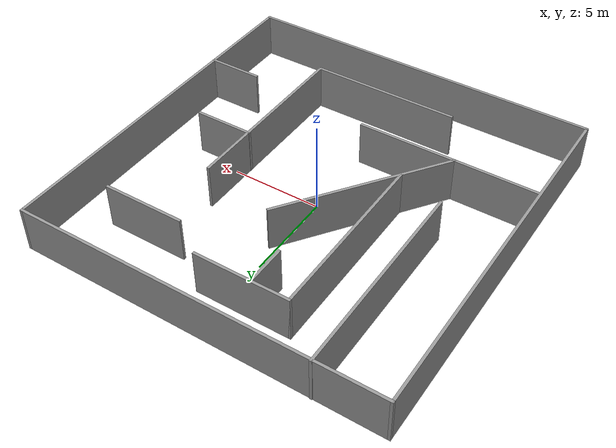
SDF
<?xml version='1.0'?>
<sdf version='1.7'>
  <model name='maze20'>
    <pose>0.051843 -0.137492 0 0 -0 0</pose>
    <link name='Wall_0'>
      <collision name='Wall_0_Collision'>
        <geometry>
          <box>
            <size>20.25 0.15 2.5</size>
          </box>
        </geometry>
        <pose>0 0 1.25 0 -0 0</pose>
      </collision>
      <visual name='Wall_0_Visual'>
        <pose>0 0 1.25 0 -0 0</pose>
        <geometry>
          <box>
            <size>20.25 0.15 2.5</size>
          </box>
        </geometry>
        <material>
          <script>
            <uri>file://media/materials/scripts/gazebo.material</uri>
            <name>Gazebo/Grey</name>
          </script>
          <ambient>1 1 1 1</ambient>
        </material>
        <meta>
          <layer>0</layer>
        </meta>
      </visual>
      <pose>-9.925 -0.014851 0 0 -0 -1.5708</pose>
    </link>
    <link name='Wall_1'>
      <collision name='Wall_1_Collision'>
        <geometry>
          <box>
            <size>20 0.15 2.5</size>
          </box>
        </geometry>
        <pose>0 0 1.25 0 -0 0</pose>
      </collision>
      <visual name='Wall_1_Visual'>
        <pose>0 0 1.25 0 -0 0</pose>
        <geometry>
          <box>
            <size>20 0.15 2.5</size>
          </box>
        </geometry>
        <material>
          <script>
            <uri>file://media/materials/scripts/gazebo.material</uri>
            <name>Gazebo/Grey</name>
          </script>
          <ambient>1 1 1 1</ambient>
        </material>
        <meta>
          <layer>0</layer>
        </meta>
      </visual>
      <pose>0 -10.0649 0 0 -0 0</pose>
    </link>
    <link name='Wall_11'>
      <collision name='Wall_11_Collision'>
        <geometry>
          <box>
            <size>10.25 0.15 2.5</size>
          </box>
        </geometry>
        <pose>0 0 1.25 0 -0 0</pose>
      </collision>
      <visual name='Wall_11_Visual'>
        <pose>0 0 1.25 0 -0 0</pose>
        <geometry>
          <box>
            <size>10.25 0.15 2.5</size>
          </box>
        </geometry>
        <material>
          <script>
            <uri>file://media/materials/scripts/gazebo.material</uri>
            <name>Gazebo/Grey</name>
          </script>
          <ambient>1 1 1 1</ambient>
        </material>
        <meta>
          <layer>0</layer>
        </meta>
      </visual>
      <pose>4.48594 -2.16863 0 0 -0 1.5708</pose>
    </link>
    <link name='Wall_13'>
      <collision name='Wall_13_Collision'>
        <geometry>
          <box>
            <size>3.25 0.15 2.5</size>
          </box>
        </geometry>
        <pose>0 0 1.25 0 -0 0</pose>
      </collision>
      <visual name='Wall_13_Visual'>
        <pose>0 0 1.25 0 -0 0</pose>
        <geometry>
          <box>
            <size>3.25 0.15 2.5</size>
          </box>
        </geometry>
        <material>
          <script>
            <uri>file://media/materials/scripts/gazebo.material</uri>
            <name>Gazebo/Grey</name>
          </script>
          <ambient>1 1 1 1</ambient>
        </material>
        <meta>
          <layer>0</layer>
        </meta>
      </visual>
      <pose>6.01176 -0.397007 0 0 -0 0</pose>
    </link>
    <link name='Wall_15'>
      <collision name='Wall_15_Collision'>
        <geometry>
          <box>
            <size>3 0.15 2.5</size>
          </box>
        </geometry>
        <pose>0 0 1.25 0 -0 0</pose>
      </collision>
      <visual name='Wall_15_Visual'>
        <pose>0 0 1.25 0 -0 0</pose>
        <geometry>
          <box>
            <size>3 0.15 2.5</size>
          </box>
        </geometry>
        <material>
          <script>
            <uri>file://media/materials/scripts/gazebo.material</uri>
            <name>Gazebo/Grey</name>
          </script>
          <ambient>1 1 1 1</ambient>
        </material>
        <meta>
          <layer>0</layer>
        </meta>
      </visual>
      <pose>8.48693 -4.67964 0 0 -0 0</pose>
    </link>
    <link name='Wall_17'>
      <collision name='Wall_17_Collision'>
        <geometry>
          <box>
            <size>9.86157 0.15 2.5</size>
          </box>
        </geometry>
        <pose>0 0 1.25 0 -0 0</pose>
      </collision>
      <visual name='Wall_17_Visual'>
        <pose>0 0 1.25 0 -0 0</pose>
        <geometry>
          <box>
            <size>9.86157 0.15 2.5</size>
          </box>
        </geometry>
        <material>
          <script>
            <uri>file://media/materials/scripts/gazebo.material</uri>
            <name>Gazebo/Grey</name>
          </script>
          <ambient>1 1 1 1</ambient>
        </material>
        <meta>
          <layer>0</layer>
        </meta>
      </visual>
      <pose>-2.5281 -0.182875 0 0 -0 0.948716</pose>
    </link>
    <link name='Wall_19'>
      <collision name='Wall_19_Collision'>
        <geometry>
          <box>
            <size>4.5 0.15 2.5</size>
          </box>
        </geometry>
        <pose>0 0 1.25 0 -0 0</pose>
      </collision>
      <visual name='Wall_19_Visual'>
        <pose>0 0 1.25 0 -0 0</pose>
        <geometry>
          <box>
            <size>4.5 0.15 2.5</size>
          </box>
        </geometry>
        <material>
          <script>
            <uri>file://media/materials/scripts/gazebo.material</uri>
            <name>Gazebo/Grey</name>
          </script>
          <ambient>1 1 1 1</ambient>
        </material>
        <meta>
          <layer>0</layer>
        </meta>
      </visual>
      <pose>5.50493 6.60816 0 0 -0 0</pose>
    </link>
    <link name='Wall_2'>
      <collision name='Wall_2_Collision'>
        <geometry>
          <box>
            <size>20.25 0.15 2.5</size>
          </box>
        </geometry>
        <pose>0 0 1.25 0 -0 0</pose>
      </collision>
      <visual name='Wall_2_Visual'>
        <pose>0 0 1.25 0 -0 0</pose>
        <geometry>
          <box>
            <size>20.25 0.15 2.5</size>
          </box>
        </geometry>
        <material>
          <script>
            <uri>file://media/materials/scripts/gazebo.material</uri>
            <name>Gazebo/Grey</name>
          </script>
          <ambient>1 1 1 1</ambient>
        </material>
        <meta>
          <layer>0</layer>
        </meta>
      </visual>
      <pose>9.925 -0.014851 0 0 -0 1.5708</pose>
    </link>
    <link name='Wall_21'>
      <collision name='Wall_21_Collision'>
        <geometry>
          <box>
            <size>9.75 0.15 2.5</size>
          </box>
        </geometry>
        <pose>0 0 1.25 0 -0 0</pose>
      </collision>
      <visual name='Wall_21_Visual'>
        <pose>0 0 1.25 0 -0 0</pose>
        <geometry>
          <box>
            <size>9.75 0.15 2.5</size>
          </box>
        </geometry>
        <material>
          <script>
            <uri>file://media/materials/scripts/gazebo.material</uri>
            <name>Gazebo/Grey</name>
          </script>
          <ambient>1 1 1 1</ambient>
        </material>
        <meta>
          <layer>0</layer>
        </meta>
      </visual>
      <pose>-3.67524 3.09295 0 0 -0 -1.5708</pose>
    </link>
    <link name='Wall_23'>
      <collision name='Wall_23_Collision'>
        <geometry>
          <box>
            <size>5.25 0.15 2.5</size>
          </box>
        </geometry>
        <pose>0 0 1.25 0 -0 0</pose>
      </collision>
      <visual name='Wall_23_Visual'>
        <pose>0 0 1.25 0 -0 0</pose>
        <geometry>
          <box>
            <size>5.25 0.15 2.5</size>
          </box>
        </geometry>
        <material>
          <script>
            <uri>file://media/materials/scripts/gazebo.material</uri>
            <name>Gazebo/Grey</name>
          </script>
          <ambient>1 1 1 1</ambient>
        </material>
        <meta>
          <layer>0</layer>
        </meta>
      </visual>
      <pose>-1.12524 7.89295 0 0 -0 0</pose>
    </link>
    <link name='Wall_25'>
      <collision name='Wall_25_Collision'>
        <geometry>
          <box>
            <size>2.25 0.15 2.5</size>
          </box>
        </geometry>
        <pose>0 0 1.25 0 -0 0</pose>
      </collision>
      <visual name='Wall_25_Visual'>
        <pose>0 0 1.25 0 -0 0</pose>
        <geometry>
          <box>
            <size>2.25 0.15 2.5</size>
          </box>
        </geometry>
        <material>
          <script>
            <uri>file://media/materials/scripts/gazebo.material</uri>
            <name>Gazebo/Grey</name>
          </script>
          <ambient>1 1 1 1</ambient>
        </material>
        <meta>
          <layer>0</layer>
        </meta>
      </visual>
      <pose>-1.65628 6.80163 0 0 -0 1.5708</pose>
    </link>
    <link name='Wall_3'>
      <collision name='Wall_3_Collision'>
        <geometry>
          <box>
            <size>20 0.15 2.5</size>
          </box>
        </geometry>
        <pose>0 0 1.25 0 -0 0</pose>
      </collision>
      <visual name='Wall_3_Visual'>
        <pose>0 0 1.25 0 -0 0</pose>
        <geometry>
          <box>
            <size>20 0.15 2.5</size>
          </box>
        </geometry>
        <material>
          <script>
            <uri>file://media/materials/scripts/gazebo.material</uri>
            <name>Gazebo/Grey</name>
          </script>
          <ambient>1 1 1 1</ambient>
        </material>
        <meta>
          <layer>0</layer>
        </meta>
      </visual>
      <pose>0 10.0351 0 0 -0 3.14159</pose>
    </link>
    <link name='Wall_5'>
      <collision name='Wall_5_Collision'>
        <geometry>
          <box>
            <size>11.25 0.15 2.5</size>
          </box>
        </geometry>
        <pose>0 0 1.25 0 -0 0</pose>
      </collision>
      <visual name='Wall_5_Visual'>
        <pose>0 0 1.25 0 -0 0</pose>
        <geometry>
          <box>
            <size>11.25 0.15 2.5</size>
          </box>
        </geometry>
        <material>
          <script>
            <uri>file://media/materials/scripts/gazebo.material</uri>
            <name>Gazebo/Grey</name>
          </script>
          <ambient>1 1 1 1</ambient>
        </material>
        <meta>
          <layer>0</layer>
        </meta>
      </visual>
      <pose>-6.21423 4.51485 0 0 -0 -1.5708</pose>
    </link>
    <link name='Wall_7'>
      <collision name='Wall_7_Collision'>
        <geometry>
          <box>
            <size>10 0.15 2.5</size>
          </box>
        </geometry>
        <pose>0 0 1.25 0 -0 0</pose>
      </collision>
      <visual name='Wall_7_Visual'>
        <pose>0 0 1.25 0 -0 0</pose>
        <geometry>
          <box>
            <size>10 0.15 2.5</size>
          </box>
        </geometry>
        <material>
          <script>
            <uri>file://media/materials/scripts/gazebo.material</uri>
            <name>Gazebo/Grey</name>
          </script>
          <ambient>1 1 1 1</ambient>
        </material>
        <meta>
          <layer>0</layer>
        </meta>
      </visual>
      <pose>-4.99064 -4.12901 0 0 -0 0</pose>
    </link>
    <link name='Wall_9'>
      <collision name='Wall_9_Collision'>
        <geometry>
          <box>
            <size>8.25 0.15 2.5</size>
          </box>
        </geometry>
        <pose>0 0 1.25 0 -0 0</pose>
      </collision>
      <visual name='Wall_9_Visual'>
        <pose>0 0 1.25 0 -0 0</pose>
        <geometry>
          <box>
            <size>8.25 0.15 2.5</size>
          </box>
        </geometry>
        <material>
          <script>
            <uri>file://media/materials/scripts/gazebo.material</uri>
            <name>Gazebo/Grey</name>
          </script>
          <ambient>1 1 1 1</ambient>
        </material>
        <meta>
          <layer>0</layer>
        </meta>
      </visual>
      <pose>0.435943 -7.21863 0 0 -0 0</pose>
    </link>
    <static>1</static>
  </model>
</sdf>
